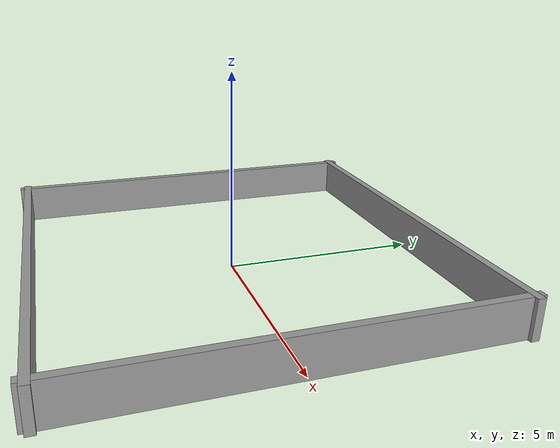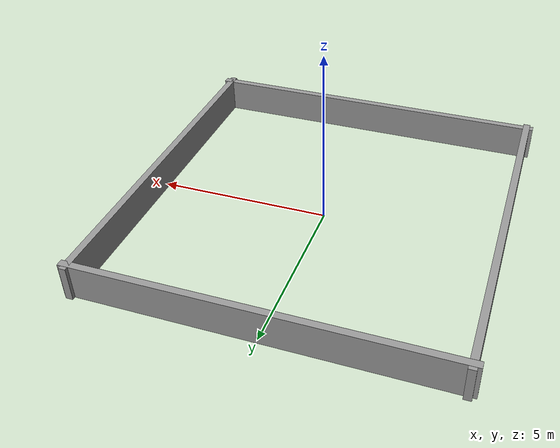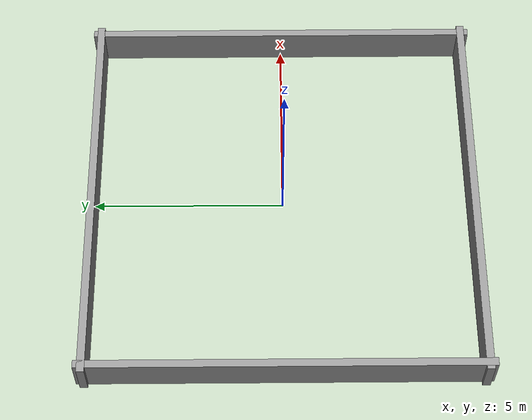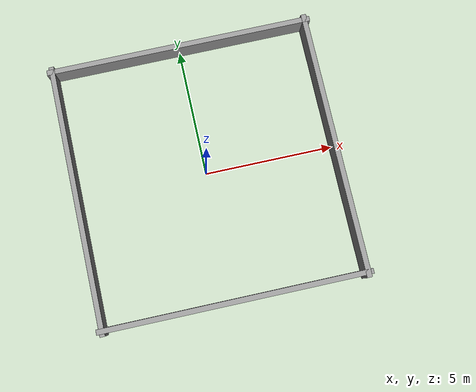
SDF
<?xml version="1.0"?>
<!-- MVP M1a: 10x10m empty room, 4 perimeter walls (box 0.2m thick, 1m high).
     bbox for coverage ground-truth: x in [-5,5], y in [-5,5], inflation 0.30m. -->
<sdf version="1.6">
  <world name="indoor_empty">
    <physics name="ode" type="ode">
      <real_time_update_rate>50.0</real_time_update_rate>
      <max_step_size>0.02</max_step_size>
    </physics>
    <gravity>0 0 -9.80665</gravity>
    <plugin name="gazebo_ros_state" filename="libgazebo_ros_state.so">
      <ros><namespace>/</namespace></ros>
      <update_rate>10.0</update_rate>
    </plugin>
    <include><uri>model://sun</uri></include>
    <model name="ground_plane">
      <static>true</static>
      <pose>0 0 0 0 0 0</pose>
      <link name="link">
        <collision name="collision">
          <geometry><plane><normal>0 0 1</normal><size>50 50</size></plane></geometry>
          <surface><friction><ode><mu>100</mu><mu2>50</mu2></ode></friction></surface>
        </collision>
      </link>
    </model>
    <model name="wall_north"><static>true</static><pose>0 5 0.5 0 0 0</pose>
      <link name="link">
        <collision name="c"><geometry><box><size>10.4 0.2 1.0</size></box></geometry></collision>
        <visual name="v"><geometry><box><size>10.4 0.2 1.0</size></box></geometry>
          <material><ambient>0.6 0.6 0.6 1</ambient></material></visual>
      </link></model>
    <model name="wall_south"><static>true</static><pose>0 -5 0.5 0 0 0</pose>
      <link name="link">
        <collision name="c"><geometry><box><size>10.4 0.2 1.0</size></box></geometry></collision>
        <visual name="v"><geometry><box><size>10.4 0.2 1.0</size></box></geometry>
          <material><ambient>0.6 0.6 0.6 1</ambient></material></visual>
      </link></model>
    <model name="wall_east"><static>true</static><pose>5 0 0.5 0 0 0</pose>
      <link name="link">
        <collision name="c"><geometry><box><size>0.2 10.4 1.0</size></box></geometry></collision>
        <visual name="v"><geometry><box><size>0.2 10.4 1.0</size></box></geometry>
          <material><ambient>0.6 0.6 0.6 1</ambient></material></visual>
      </link></model>
    <model name="wall_west"><static>true</static><pose>-5 0 0.5 0 0 0</pose>
      <link name="link">
        <collision name="c"><geometry><box><size>0.2 10.4 1.0</size></box></geometry></collision>
        <visual name="v"><geometry><box><size>0.2 10.4 1.0</size></box></geometry>
          <material><ambient>0.6 0.6 0.6 1</ambient></material></visual>
      </link></model>
  </world>
</sdf>
